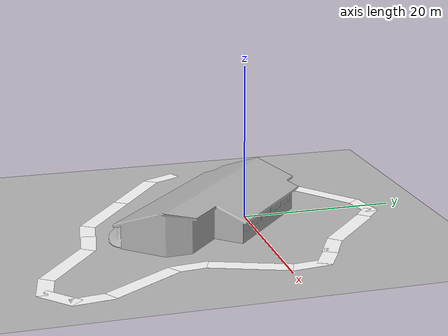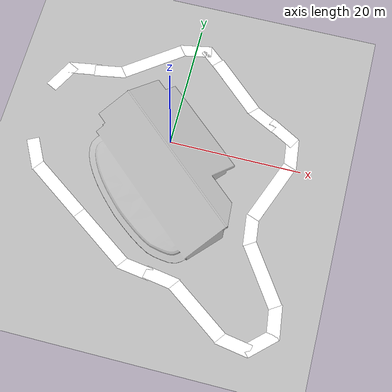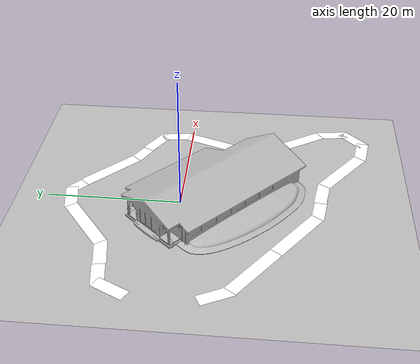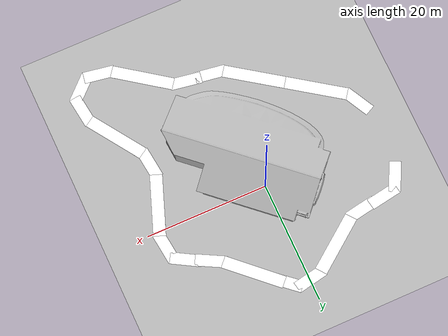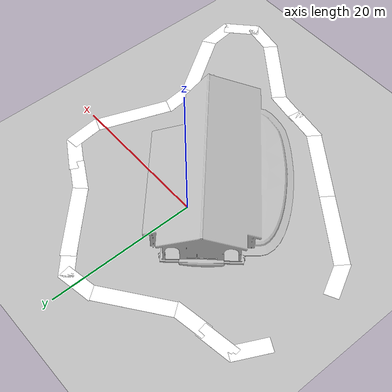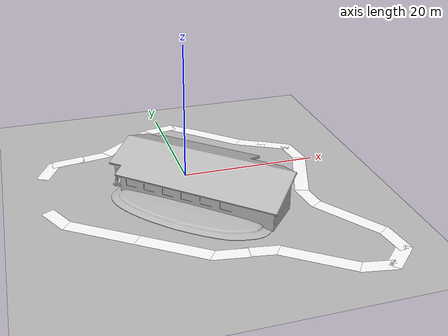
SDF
<?xml version="1.0" ?>
<sdf version="1.8">
  <world name="follow_road">
    <physics name="1ms" type="ignored">
      <max_step_size>0.004</max_step_size>
      <real_time_factor>1.0</real_time_factor>
    </physics>
    <plugin
      filename="gz-sim-physics-system"
      name="gz::sim::systems::Physics">
    </plugin>
    <plugin
      filename="gz-sim-user-commands-system"
      name="gz::sim::systems::UserCommands">
    </plugin>
    <plugin
      filename="gz-sim-scene-broadcaster-system"
      name="gz::sim::systems::SceneBroadcaster">
    </plugin>
    <plugin
      filename="gz-sim-sensors-system"
      name="gz::sim::systems::Sensors">
      <render_engine>ogre2</render_engine>
    </plugin>

    <!--light-->
    <light type="directional" name="sun">
      <cast_shadows>true</cast_shadows>
      <pose>0 0 10 0 0 0</pose>
      <diffuse>0.8 0.8 0.8 1</diffuse>
      <specular>0.2 0.2 0.2 1</specular>
      <attenuation>
        <range>1000</range>
        <constant>0.9</constant>
        <linear>0.01</linear>
        <quadratic>0.001</quadratic>
      </attenuation>
      <direction>-0.5 0.1 -0.9</direction>
    </light>

    <gui>
      <camera name='user_camera'>
        <pose>-25 20 1.5 0 0 -0.785</pose>
      </camera>
    </gui>

		<!-- Building -->
    <include>
      <uri>model://osrf_first_office</uri>
      <name>osrf_first_office</name>
      <pose>2.7431375980377197 -5.286156177520752 0 0 0 -0.73836601026213899</pose>
    </include>

    <!-- Grass Plane -->
    <include>
      <uri>model://grass_plane</uri>
      <name>grass_plane</name>
      <pose>0 0 -0.001 0 0 0</pose>
    </include>

    <!-- Road -->
    <include>
      <uri>model://road_plane</uri>
      <name>road_plane</name>
      <pose>-20 0 0 0 0 0</pose>
    </include>
    <include>
      <uri>model://road_curve</uri>
      <name>road_curve</name>
      <pose>-19.128223419189453 -6.8325963020324707 0 0 0 2.0420399331135197</pose>
    </include>
    <include>
      <uri>model://road_plane</uri>
      <name>road_plane_1</name>
      <pose>-14.0817 -11.5282 0 0 0 0.95207399999999998</pose>
    </include>
    <include>
      <uri>model://road_plane</uri>
      <name>road_plane_2</name>
      <pose>-5.9459776878356916 -17.320466995239258 0 0 0 0.95207395533950367</pose>
    </include>
    <include>
      <uri>model://road_curve</uri>
      <name>road_curve_0</name>
      <pose>0.14164115488529147 -20.581552505493164 0 0 0 2.9917700031401813</pose>
    </include>
    <include>
      <uri>model://road_curve</uri>
      <name>road_curve_1</name>
      <pose>4.1792788505554208 -21.100765228271481 0 0 0 -0.16342002852905516</pose>
    </include>
    <include>
      <uri>model://road_plane</uri>
      <name>road_plane_3</name>
      <pose>10.21527099609375 -24.437944412231445 0 0 0 -2.202900012738445</pose>
    </include>
    <include>
      <uri>model://road_curve</uri>
      <name>road_curve_2</name>
      <pose>16.223600387573239 -27.780799865722653 0 0 0 2.9730700001345052</pose>
    </include>
    <include>
      <uri>model://road_curve</uri>
      <name>road_curve_3</name>
      <pose>19.776954650878906 -26.706022262573242 0 0 0 -2.3829599949628224</pose>
    </include>
    <include>
      <uri>model://road_curve</uri>
      <name>road_curve_4</name>
      <pose>21.017391204833984 -23.230445861816406 0 0 0 -1.4487100328069633</pose>
    </include>
    <include>
      <uri>model://road_plane</uri>
      <name>road_plane_4</name>
      <pose>17.954458236694336 -17.02301025390625 0 0 0 0.58389300612600548</pose>
    </include>
    <include>
      <uri>model://road_curve</uri>
      <name>road_curve_5</name>
      <pose>14.925982475280762 -10.838279724121094 0 0 0 1.6777900079117787</pose>
    </include>
    <include>
      <uri>model://road_plane</uri>
      <name>road_plane_5</name>
      <pose>16.516273498535156 -4.1151680946350098 0 0 0 -0.35735699209187988</pose>
    </include>
    <include>
      <uri>model://road_curve</uri>
      <name>road_curve_6</name>
      <pose>18.102605819702148 2.611170768737793 0 0 0 -1.4624300425145729</pose>
    </include>
    <include>
      <uri>model://road_curve</uri>
      <name>road_curve_7</name>
      <pose>16.092544555664062 5.7186846733093262 0 0 0 -0.52887699027007007</pose>
    </include>
    <include>
      <uri>model://road_curve</uri>
      <name>road_curve_8</name>
      <pose>12.658302307128906 7.5311212539672852 0 0 0 2.6473999899781404</pose>
    </include>
    <include>
      <uri>model://road_curve</uri>
      <name>road_curve_14</name>
      <pose>3.3998198509216309 15.474347114562988 0 0 0 -0.72206896531390119</pose>
    </include>
    <include>
      <uri>model://road_curve</uri>
      <name>road_curve_15</name>
      <pose>-0.12906567752361298 16.466999053955078 0 0 0 0.18520300174408241</pose>
    </include>
    <include>
      <uri>model://road_curve</uri>
      <name>road_curve_9</name>
      <pose>-19.122169494628906 6.8502402305603027 0 0 0 1.0991300287569881</pose>
    </include>
    <include>
      <uri>model://road_curve</uri>
      <name>road_curve_12</name>
      <pose>-16.12800407409668 9.0331172943115234 0 0 0 0.16141699844184379</pose>
    </include>
    <include>
      <uri>model://road_curve</uri>
      <name>road_curve_16</name>
      <pose>-12.077943801879883 9.586822509765625 0 0 0 -2.9699500006083168</pose>
    </include>
    <include>
      <uri>model://road_plane</uri>
      <name>road_plane_0</name>
      <pose>-6.1061697006225586 13.010586738586426 0 0 0 2.2191100224937821</pose>
    </include>
    <include>
      <uri>model://road_plane</uri>
      <name>road_plane_6</name>
      <pose>7.3916501998901367 11.8665771484375 0 0 0 0.81320396213978929</pose>
    </include>

  </world>
</sdf>

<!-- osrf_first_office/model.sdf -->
<sdf version="1.6">
  <model name="osrf_first_office">
    <static>true</static>
    <link name="link">
      <collision name="collision">
        <geometry>
          <mesh>
            <uri>model://../model_source/models/osrf_first_office/meshes/osrf_first_office.dae</uri>
          </mesh>
        </geometry>
      </collision>
      <visual name="visual">
        <geometry>
          <mesh>
            <uri>model://../model_source/models/osrf_first_office/meshes/osrf_first_office.dae</uri>
          </mesh>
        </geometry>
      </visual>
    </link>
  </model>
</sdf>

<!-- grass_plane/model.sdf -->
<sdf version="1.4">
  <model name="grass_plane">
    <static>true</static>
    <link name="link">
      <collision name="collision">
        <geometry>
          <plane>
            <normal>0 0 1</normal>
            <size>750 750</size>
          </plane>
        </geometry>
        <surface>
          <friction>
            <ode>
              <mu>0.5</mu>
              <mu2>.5</mu2>
            </ode>
          </friction>
        </surface>
      </collision>

      <visual name="visual_0">
        <pose>2 -5 0 0 0 0</pose>

        <cast_shadows>false</cast_shadows>
        <geometry>
          <mesh>
            <uri>model://grass_plane/meshes/grass_plane.dae</uri>
            <scale>3 3 1</scale>
          </mesh>
        </geometry>
      </visual>
    </link>
  </model>
</sdf>

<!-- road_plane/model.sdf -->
<sdf version='1.4'>
  <model name='road_plane'>
    <static>true</static>
    <link name='link'>
      <collision name='collision'>
        <pose>0 0 0 0 0 0</pose>
        <geometry>
          <plane>
            <normal>0 0 1</normal>
            <size>2 10</size>
          </plane>
        </geometry>
        <surface>
          <friction>
            <ode>
              <mu>0.5</mu>
              <mu2>.5</mu2>
            </ode>
          </friction>
        </surface>
      </collision>

      <visual name='visual_s10'>
        <pose>0 0 0 0 0 0</pose>
        <cast_shadows>false</cast_shadows>
        <geometry>
          <plane>
            <normal>0 0 1</normal>
            <size>2 10</size>
          </plane>
        </geometry>
        <material>
          <diffuse>1.0 1.0 1.0</diffuse>
          <specular>1.0 1.0 1.0</specular>
          <pbr>
            <metal>
              <albedo_map>materials/textures/Road_Albedo.png</albedo_map>
              <roughness_map>materials/textures/Road_Roughness.png</roughness_map>
            </metal>
          </pbr>
        </material>
      </visual>

    </link>
  </model>
</sdf>

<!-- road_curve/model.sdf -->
<sdf version='1.4'>
  <model name='road_curve'>
    <static>true</static>
    <link name='link'>
      <collision name='collision'>
        <pose>0 0 0 0 0 0</pose>
        <geometry>
          <plane>
            <normal>0 0 1</normal>
            <size>5 1.895</size>
          </plane>
        </geometry>
        <surface>
          <friction>
            <ode>
              <mu>0.5</mu>
              <mu2>.5</mu2>
            </ode>
          </friction>
        </surface>
      </collision>

      <visual name='visual_s10'>
        <pose>0 0 0 0 0 0</pose>
        <cast_shadows>false</cast_shadows>
        <geometry>
          <plane>
            <normal>0 0 1</normal>
            <size>5 1.895</size>
          </plane>
        </geometry>
        <material>
          <diffuse>1.0 1.0 1.0</diffuse>
          <specular>1.0 1.0 1.0</specular>
          <pbr>
            <metal>
              <albedo_map>materials/textures/Road_Albedorot.png</albedo_map>
              <roughness_map>materials/textures/Road_Roughnessrot.png</roughness_map>
            </metal>
          </pbr>
        </material>
      </visual>

    </link>
  </model>
</sdf>
